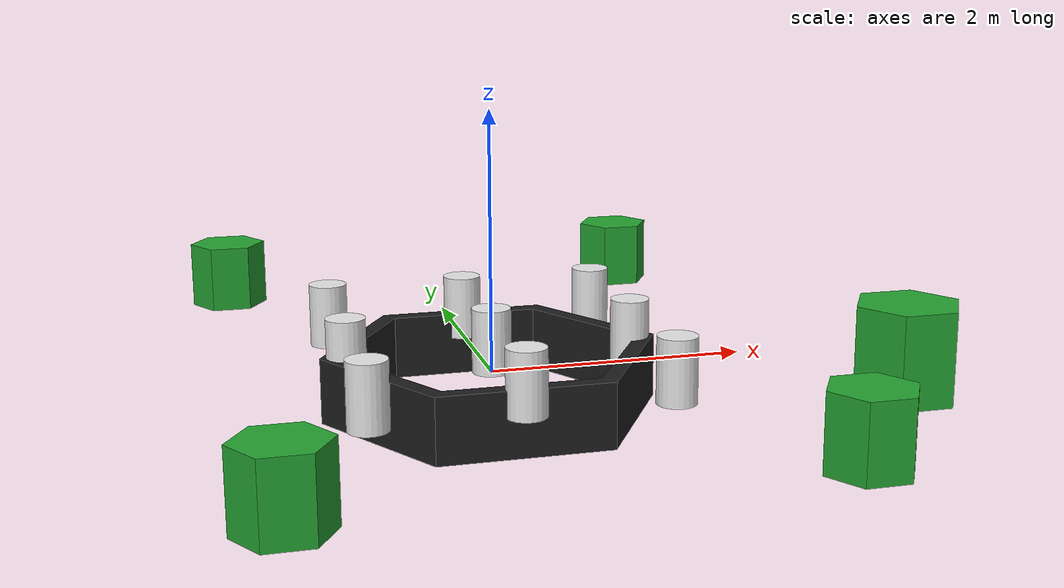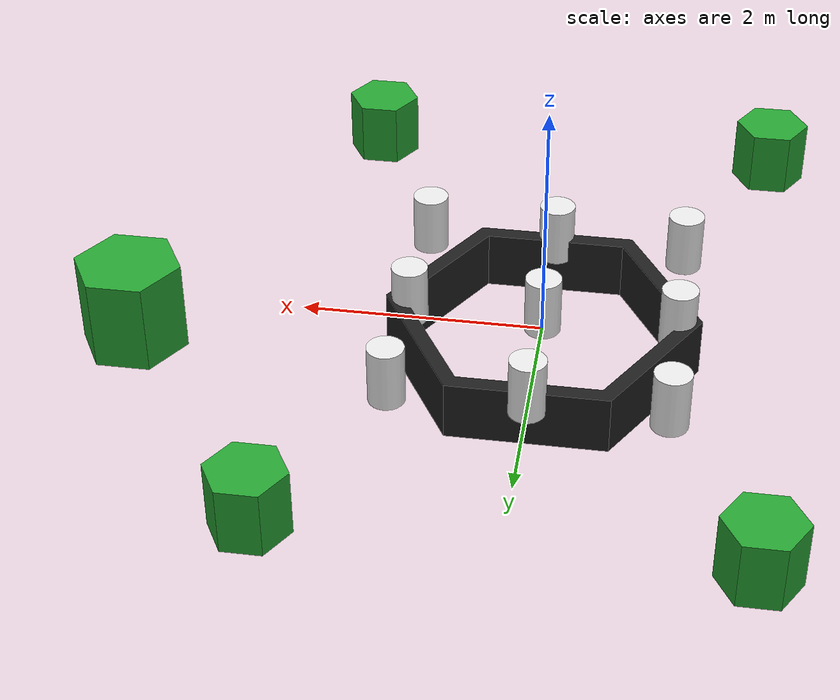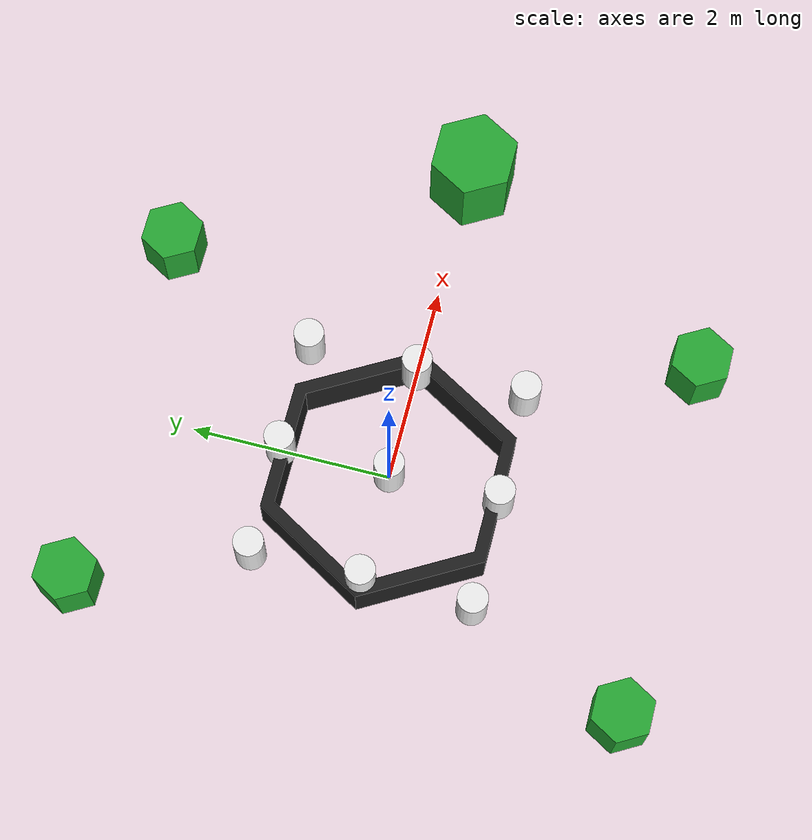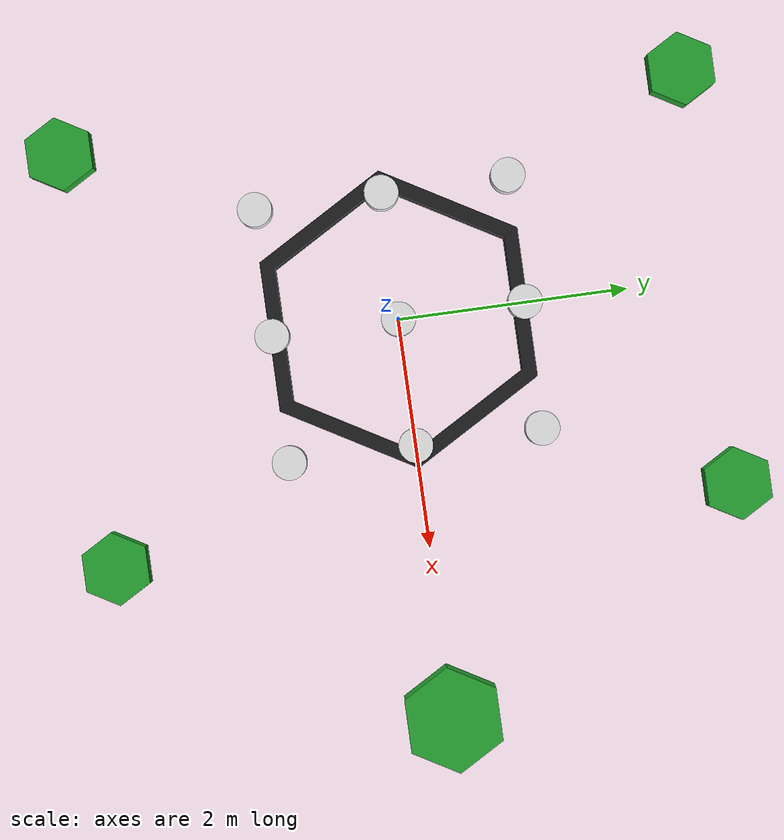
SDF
<?xml version="1.0" ?>
<sdf version='1.6'>
    <!-- Draw Circle -->
    <model name='hexa'>
      <static>1</static>
      <link name='symbol'>
        <collision name='one_one'>
          <pose>-1.1 -1.1 0.25 0 0 0</pose>
          <geometry>
            <cylinder>
              <radius>0.15</radius>
              <length>0.5</length>
            </cylinder>
          </geometry>
          <max_contacts>10</max_contacts>
          <surface>
            <bounce/>
            <friction>
              <ode/>
            </friction>
            <contact>
              <ode/>
            </contact>
          </surface>
        </collision>

        <visual name='one_one'>
          <pose>-1.1 -1.1 0.25 0 0 0</pose>
          <geometry>
            <cylinder>
              <radius>0.15</radius>
              <length>0.5</length>
            </cylinder>
          </geometry>
          <material>
            <script>
              <uri>file://media/materials/scripts/gazebo.material</uri>
              <name>Gazebo/White</name>
            </script>
          </material>
        </visual>

        <collision name='one_two'>
          <pose>-1.1 0 0.25 0 0 0</pose>
          <geometry>
            <cylinder>
              <radius>0.15</radius>
              <length>0.5</length>
            </cylinder>
          </geometry>
          <max_contacts>10</max_contacts>
          <surface>
            <bounce/>
            <friction>
              <ode/>
            </friction>
            <contact>
              <ode/>
            </contact>
          </surface>
        </collision>

        <visual name='one_two'>
          <pose>-1.1 0 0.25 0 0 0</pose>
          <geometry>
            <cylinder>
              <radius>0.15</radius>
              <length>0.5</length>
            </cylinder>
          </geometry>
          <material>
            <script>
              <uri>file://media/materials/scripts/gazebo.material</uri>
              <name>Gazebo/White</name>
            </script>
          </material>
        </visual>

        <collision name='one_three'>
          <pose>-1.1 1.1 0.25 0 0 0</pose>
          <geometry>
            <cylinder>
              <radius>0.15</radius>
              <length>0.5</length>
            </cylinder>
          </geometry>
          <max_contacts>10</max_contacts>
          <surface>
            <bounce/>
            <friction>
              <ode/>
            </friction>
            <contact>
              <ode/>
            </contact>
          </surface>
        </collision>

        <visual name='one_three'>
          <pose>-1.1 1.1 0.25 0 0 0</pose>
          <geometry>
            <cylinder>
              <radius>0.15</radius>
              <length>0.5</length>
            </cylinder>
          </geometry>
          <material>
            <script>
              <uri>file://media/materials/scripts/gazebo.material</uri>
              <name>Gazebo/White</name>
            </script>
          </material>
        </visual>

        <collision name='two_one'>
          <pose>0 -1.1 0.25 0 0 0</pose>
          <geometry>
            <cylinder>
              <radius>0.15</radius>
              <length>0.5</length>
            </cylinder>
          </geometry>
          <max_contacts>10</max_contacts>
          <surface>
            <bounce/>
            <friction>
              <ode/>
            </friction>
            <contact>
              <ode/>
            </contact>
          </surface>
        </collision>

        <visual name='two_one'>
          <pose>0 -1.1 0.25 0 0 0</pose>
          <geometry>
            <cylinder>
              <radius>0.15</radius>
              <length>0.5</length>
            </cylinder>
          </geometry>
          <material>
            <script>
              <uri>file://media/materials/scripts/gazebo.material</uri>
              <name>Gazebo/White</name>
            </script>
          </material>
        </visual>

        <collision name='two_two'>
          <pose>0 0 0.25 0 0 0</pose>
          <geometry>
            <cylinder>
              <radius>0.15</radius>
              <length>0.5</length>
            </cylinder>
          </geometry>
          <max_contacts>10</max_contacts>
          <surface>
            <bounce/>
            <friction>
              <ode/>
            </friction>
            <contact>
              <ode/>
            </contact>
          </surface>
        </collision>

        <visual name='two_two'>
          <pose>0 0 0.25 0 0 0</pose>
          <geometry>
            <cylinder>
              <radius>0.15</radius>
              <length>0.5</length>
            </cylinder>
          </geometry>
          <material>
            <script>
              <uri>file://media/materials/scripts/gazebo.material</uri>
              <name>Gazebo/White</name>
            </script>
          </material>
        </visual>

        <collision name='two_three'>
          <pose>0 1.1 0.25 0 0 0</pose>
          <geometry>
            <cylinder>
              <radius>0.15</radius>
              <length>0.5</length>
            </cylinder>
          </geometry>
          <max_contacts>10</max_contacts>
          <surface>
            <bounce/>
            <friction>
              <ode/>
            </friction>
            <contact>
              <ode/>
            </contact>
          </surface>
        </collision>

        <visual name='two_three'>
          <pose>0 1.1 0.25 0 0 0</pose>
          <geometry>
            <cylinder>
              <radius>0.15</radius>
              <length>0.5</length>
            </cylinder>
          </geometry>
          <material>
            <script>
              <uri>file://media/materials/scripts/gazebo.material</uri>
              <name>Gazebo/White</name>
            </script>
          </material>
        </visual>

        <collision name='three_one'>
          <pose>1.1 -1.1 0.25 0 0 0</pose>
          <geometry>
            <cylinder>
              <radius>0.15</radius>
              <length>0.5</length>
            </cylinder>
          </geometry>
          <max_contacts>10</max_contacts>
          <surface>
            <bounce/>
            <friction>
              <ode/>
            </friction>
            <contact>
              <ode/>
            </contact>
          </surface>
        </collision>

        <visual name='three_one'>
          <pose>1.1 -1.1 0.25 0 0 0</pose>
          <geometry>
            <cylinder>
              <radius>0.15</radius>
              <length>0.5</length>
            </cylinder>
          </geometry>
          <material>
            <script>
              <uri>file://media/materials/scripts/gazebo.material</uri>
              <name>Gazebo/White</name>
            </script>
          </material>
        </visual>

        <collision name='three_two'>
          <pose>1.1 0 0.25 0 0 0</pose>
          <geometry>
            <cylinder>
              <radius>0.15</radius>
              <length>0.5</length>
            </cylinder>
          </geometry>
          <max_contacts>10</max_contacts>
          <surface>
            <bounce/>
            <friction>
              <ode/>
            </friction>
            <contact>
              <ode/>
            </contact>
          </surface>
        </collision>

        <visual name='three_two'>
          <pose>1.1 0 0.25 0 0 0</pose>
          <geometry>
            <cylinder>
              <radius>0.15</radius>
              <length>0.5</length>
            </cylinder>
          </geometry>
          <material>
            <script>
              <uri>file://media/materials/scripts/gazebo.material</uri>
              <name>Gazebo/White</name>
            </script>
          </material>
        </visual>

        <collision name='three_three'>
          <pose>1.1 1.1 0.25 0 0 0</pose>
          <geometry>
            <cylinder>
              <radius>0.15</radius>
              <length>0.5</length>
            </cylinder>
          </geometry>
          <max_contacts>10</max_contacts>
          <surface>
            <bounce/>
            <friction>
              <ode/>
            </friction>
            <contact>
              <ode/>
            </contact>
          </surface>
        </collision>

        <visual name='three_three'>
          <pose>1.1 1.1 0.25 0 0 0</pose>
          <geometry>
            <cylinder>
              <radius>0.15</radius>
              <length>0.5</length>
            </cylinder>
          </geometry>
          <material>
            <script>
              <uri>file://media/materials/scripts/gazebo.material</uri>
              <name>Gazebo/White</name>
            </script>
          </material>
        </visual>

        <!-- Draw Hexagon -->
        <collision name='head'>
          <pose>3.5 0 -0.5 0 0 0</pose>
          <geometry>
            <mesh>
              <uri>model://hexa/meshes/hexagon.dae</uri>
              <scale>0.8 0.8 0.8</scale>
            </mesh>
          </geometry>
          <max_contacts>10</max_contacts>
          <surface>
            <bounce/>
            <friction>
              <ode/>
            </friction>
            <contact>
              <ode/>
            </contact>
          </surface>
        </collision>

        <visual name='head'>
          <pose>3.5 0 -0.5 0 0 0</pose>
          <geometry>
            <mesh>
              <uri>model://hexa/meshes/hexagon.dae</uri>
              <scale>0.8 0.8 0.8</scale>
            </mesh>
          </geometry>
          <material>
            <script>
              <uri>file://media/materials/scripts/gazebo.material</uri>
              <name>Gazebo/Green</name>
            </script>
          </material>
        </visual>

        <collision name='left_hand'>
          <pose>1.8 2.7 0 0 0 0</pose>
          <geometry>
            <mesh>
              <uri>model://hexa/meshes/hexagon.dae</uri>
              <scale>0.55 0.55 0.55</scale>
            </mesh>
          </geometry>
          <max_contacts>10</max_contacts>
          <surface>
            <bounce/>
            <friction>
              <ode/>
            </friction>
            <contact>
              <ode/>
            </contact>
          </surface>
        </collision>

        <visual name='left_hand'>
          <pose>1.8 2.7 0 0 0 0</pose>
          <geometry>
            <mesh>
              <uri>model://hexa/meshes/hexagon.dae</uri>
              <scale>0.55 0.55 0.55</scale>
            </mesh>
          </geometry>
          <material>
            <script>
              <uri>file://media/materials/scripts/gazebo.material</uri>
              <name>Gazebo/Green</name>
            </script>
          </material>
        </visual>

        <collision name='right_hand'>
          <pose>1.8 -2.7 0 0 0 0</pose>
          <geometry>
            <mesh>
              <uri>model://hexa/meshes/hexagon.dae</uri>
              <scale>0.55 0.55 0.55</scale>
            </mesh>
          </geometry>
          <max_contacts>10</max_contacts>
          <surface>
            <bounce/>
            <friction>
              <ode/>
            </friction>
            <contact>
              <ode/>
            </contact>
          </surface>
        </collision>

        <visual name='right_hand'>
          <pose>1.8 -2.7 0 0 0 0</pose>
          <geometry>
            <mesh>
              <uri>model://hexa/meshes/hexagon.dae</uri>
              <scale>0.55 0.55 0.55</scale>
            </mesh>
          </geometry>
          <material>
            <script>
              <uri>file://media/materials/scripts/gazebo.material</uri>
              <name>Gazebo/Green</name>
            </script>
          </material>
        </visual>

        <collision name='left_foot'>
          <pose>-1.8 2.7 0 0 0 0</pose>
          <geometry>
            <mesh>
              <uri>model://hexa/meshes/hexagon.dae</uri>
              <scale>0.55 0.55 0.55</scale>
            </mesh>
          </geometry>
          <max_contacts>10</max_contacts>
          <surface>
            <bounce/>
            <friction>
              <ode/>
            </friction>
            <contact>
              <ode/>
            </contact>
          </surface>
        </collision>

        <visual name='left_foot'>
          <pose>-1.8 2.7 0 0 0 0</pose>
          <geometry>
            <mesh>
              <uri>model://hexa/meshes/hexagon.dae</uri>
              <scale>0.55 0.55 0.55</scale>
            </mesh>
          </geometry>
          <material>
            <script>
              <uri>file://media/materials/scripts/gazebo.material</uri>
              <name>Gazebo/Green</name>
            </script>
          </material>
        </visual>

        <collision name='right_foot'>
          <pose>-1.8 -2.7 0 0 0 0</pose>
          <geometry>
            <mesh>
              <uri>model://hexa/meshes/hexagon.dae</uri>
              <scale>0.55 0.55 0.55</scale>
            </mesh>
          </geometry>
          <max_contacts>10</max_contacts>
          <surface>
            <bounce/>
            <friction>
              <ode/>
            </friction>
            <contact>
              <ode/>
            </contact>
          </surface>
        </collision>

        <visual name='right_foot'>
          <pose>-1.8 -2.7 0 0 0 0</pose>
          <geometry>
            <mesh>
              <uri>model://hexa/meshes/hexagon.dae</uri>
              <scale>0.55 0.55 0.55</scale>
            </mesh>
          </geometry>
          <material>
            <script>
              <uri>file://media/materials/scripts/gazebo.material</uri>
              <name>Gazebo/Green</name>
            </script>
          </material>
        </visual>

        <!-- Draw Wall -->
        <collision name='body'>
        <pose>0 0 -0.3 0 0 -1.5708</pose>
        <geometry>
          <mesh>
            <uri>model://hexa/meshes/wall.dae</uri>
            <scale>0.25 0.25 0.25</scale>
          </mesh>
        </geometry>
        <max_contacts>10</max_contacts>
        <surface>
          <bounce/>
          <friction>
            <ode/>
          </friction>
          <contact>
            <ode/>
          </contact>
        </surface>
      </collision>

      <visual name='body'>
        <pose>0 0 -0.3 0 0 -1.5708</pose>
        <geometry>
          <mesh>
            <uri>model://hexa/meshes/wall.dae</uri>
            <scale>0.25 0.25 0.25</scale>
          </mesh>
        </geometry>
        <material>
          <script>
            <uri>file://media/materials/scripts/gazebo.material</uri>
            <name>Gazebo/FlatBlack</name>
          </script>
        </material>
      </visual>
    </link>
  </model>
</sdf>
